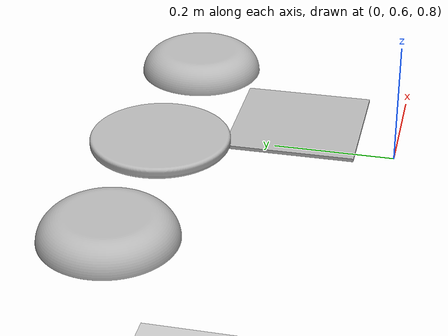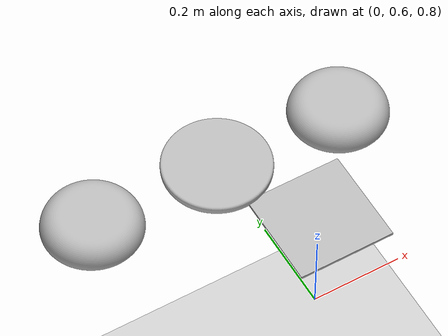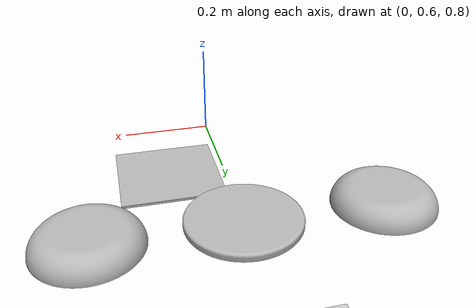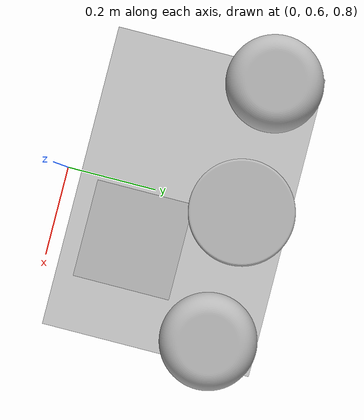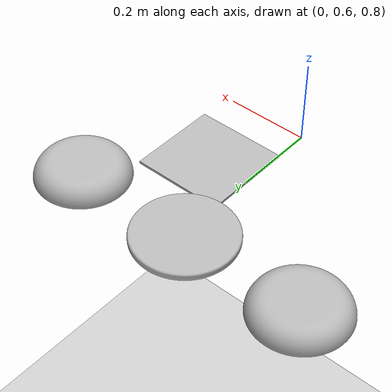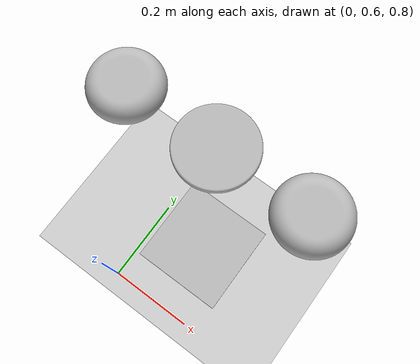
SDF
<sdf version="1.4">
 <world name="default">
  <include><uri>model://ground_plane</uri></include>
  <include><uri>model://sun</uri></include>
  <model name="Top Bun">
   <pose>-.3 1 .78  0 0 0</pose>
   <static>true</static>
   <link name="body">
    <visual name="visual">
     <geometry><mesh><uri>file://MeshFiles/Bun_v1.stl</uri><scale>0.005 0.005 0.005</scale></mesh></geometry>
    </visual>
   </link>
  </model>
  <model name="burger_v1">
   <pose>0 1 .78  0 0 0</pose>
   <static>true</static>
   <link name="body">
    <visual name="visual">
     <geometry><mesh><uri>file://MeshFiles/burger_v1.stl</uri><scale>0.005 0.005 0.005</scale></mesh></geometry>
    </visual>
   </link>
  </model>
  <model name="Bottom_Bun">
   <pose>.3 1 .78  0 0 0</pose>
   <static>true</static>
   <link name="body">
    <visual name="visual">
     <geometry><mesh><uri>file://MeshFiles/Bun_v1.stl</uri><scale>0.005 0.005 0.005</scale></mesh></geometry>
    </visual>
   </link>
  </model>
  <model name="Cheese_slice">
   <pose>.2 .7 .78  0 0 0</pose>
   <static>true</static>
   <link name="body">
    <visual name="visual">
     <geometry><mesh><uri>file://MeshFiles/cheese_v3.stl</uri><scale>0.005 0.005 0.005</scale></mesh></geometry>
    </visual>
   </link>
  </model>
 </world>
</sdf>
